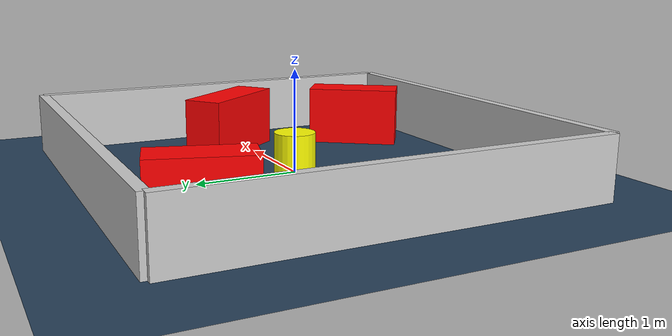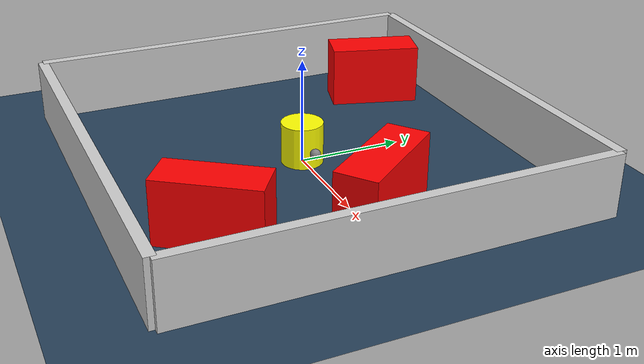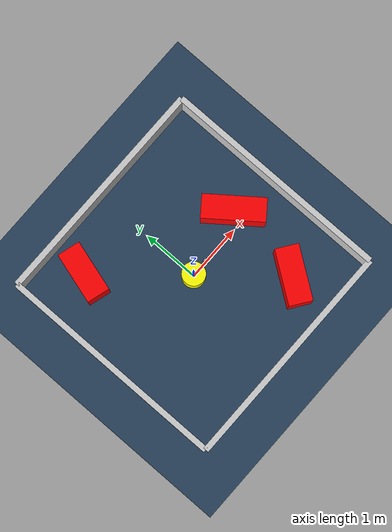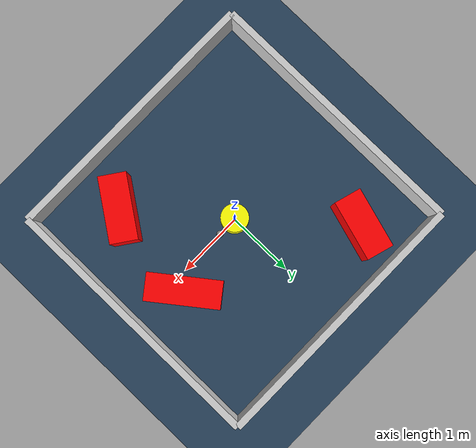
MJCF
<?xml version="1.0" ?>
<mujoco model="generated_environment">
  <option timestep="0.01" integrator="RK4" cone="elliptic"/>
  <default>
    <geom density="1"/>
  </default>
  <asset>
    <texture builtin="gradient" height="3072" rgb1="0.3 0.5 0.7" rgb2="0 0 0" type="skybox" width="512"/>
    <texture builtin="checker" height="300" mark="edge" markrgb="0.8 0.8 0.8" name="groundplane" rgb1="0.2 0.3 0.4" rgb2="0.1 0.2 0.3" type="2d" width="300"/>
    <material name="groundplane" reflectance="0.2" texrepeat="5 5" texture="groundplane" texuniform="true"/>
    <material name="robot" rgba="0.0 1.0 0.0 1"/>
  </asset>
  <worldbody>
    <light dir="0 0 -1" directional="true" pos="0 0 1.5"/>
    <geom condim="4" friction="1.0 0.005 0.001" material="groundplane" name="floor" size="0 0 0.05" type="plane"/>
    <body name="walls">
      <geom name="wall_1" condim="4" pos="-2.0 0.0 0.3" rgba="0.800000011920929 0.800000011920929 0.800000011920929 1.0" size="0.05 2.0 0.3" type="box"/>
      <geom name="wall_2" condim="4" pos="2.0 0.0 0.3" rgba="0.800000011920929 0.800000011920929 0.800000011920929 1.0" size="0.05 2.0 0.3" type="box"/>
      <geom name="wall_3" condim="4" pos="0.0 -2.0 0.3" rgba="0.800000011920929 0.800000011920929 0.800000011920929 1.0" size="2.0 0.05 0.3" type="box"/>
      <geom name="wall_4" condim="4" pos="0.0 2.0 0.3" rgba="0.800000011920929 0.800000011920929 0.800000011920929 1.0" size="2.0 0.05 0.3" type="box"/>
    </body>
    <body name="robot">
      <joint name="joint_x" type="slide" pos="0 0 0" axis="1 0 0"/>
      <joint name="joint_y" type="slide" pos="0 0 0" axis="0 1 0"/>
      <geom name="robot" type="sphere" pos="0.3 0.0 0.2" size="0.05" mass="5." friction="1.0 0.005 0.0001" condim="4" rgba="0.5 0.5 0.5 1.0"/>
      <site name="sensor_ball"/>
    </body>
    <body name="obstacle_movable_1">
      <geom name="obstacle_movable_1" condim="4" pos="0.0 0.0 0.2" euler="0 0 0.0" friction="1.0 0.005 0.001" rgba="1.0 1.0 0.0 1.0" size="0.2 0.2 0.0" type="cylinder" mass="0.1"/>
      <joint type="free"/>
    </body>
    <body name="obstacle_2_static">
      <geom name="obstacle_2_static" condim="4" pos="1.024250003566991 -1.2289580410342809 0.3" euler="0 0 234.9009748119175" friction="1.0 0.005 0.001" rgba="1 0 0 1" size="0.47377776030166713 0.2 0.3" type="box"/>
    </body>
    <body name="obstacle_3_static">
      <geom name="obstacle_3_static" condim="4" pos="-1.1530169322241388 1.3321351604216305 0.3" euler="0 0 73.83901021546808" friction="1.0 0.005 0.001" rgba="1 0 0 1" size="0.4484383225405584 0.2 0.3" type="box"/>
    </body>
    <body name="obstacle_4_static">
      <geom name="obstacle_4_static" condim="4" pos="1.2083665160278318 0.1995726161945186 0.3" euler="0 0 307.41305260517817" friction="1.0 0.005 0.001" rgba="1 0 0 1" size="0.5297518264046276 0.2 0.3" type="box"/>
    </body>
  </worldbody>
  <actuator>
    <motor name="actuator_x" joint="joint_x" gear="1" ctrlrange="-1 1"/>
    <motor name="actuator_y" joint="joint_y" gear="1" ctrlrange="-1 1"/>
  </actuator>
</mujoco>
